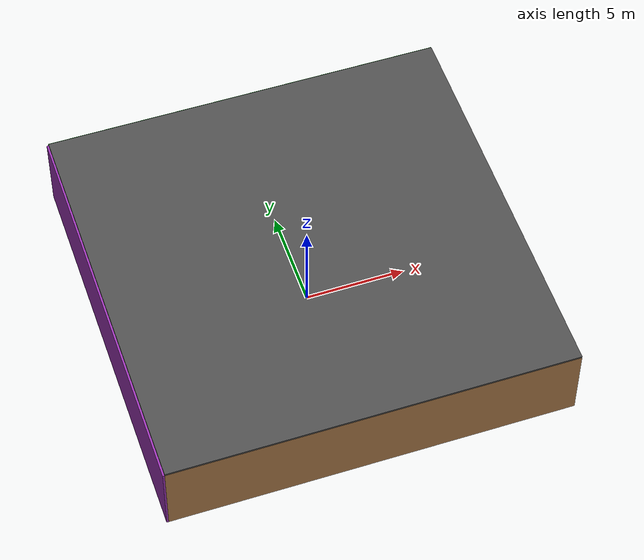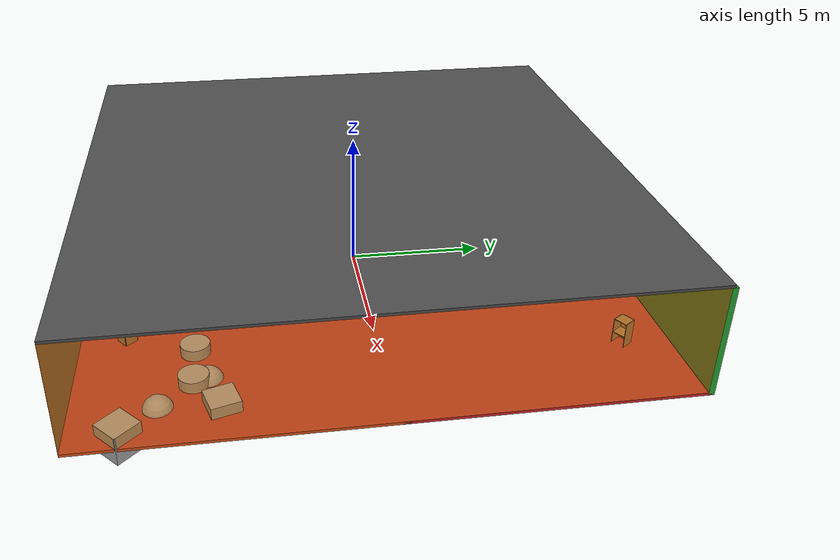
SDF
<sdf version="1.4">
 <world name="default">
  <physics type="ode">
   <max_step_size>0.001</max_step_size>
   <real_time_factor>1</real_time_factor>
   <real_time_update_rate>1000</real_time_update_rate>
   <gravity>0 0 -9.8</gravity>
  </physics>
  <scene><ambient>0.4 0.4 0.4 1</ambient><background>0.7 0.7 0.7 1</background><shadows>1</shadows></scene>
  <model name="Surrounding">
   <static>1</static>
   <link name="Ceiling">
    <collision name="Ceiling_Collision"><geometry><box><size>20 20 0.1</size></box></geometry></collision>
    <visual name="Ceiling_Visual">
     <geometry><box><size>20 20 0.1</size></box></geometry>
     <material>
      <script><uri>file://media/materials/scripts/gazebo.material</uri><name>Gazebo/DarkGrey</name></script>
     </material>
    </visual>
    <pose>0 0 4.05 0 0 0</pose>
   </link>
   <link name="Wall_South">
    <collision name="Wall_South_Collision">
     <geometry><box><size>20 0 4</size></box></geometry>
     <pose>0 0 2 0 -0 0</pose>
    </collision>
    <visual name="Wall_South_Visual">
     <pose>0 0 2 0 -0 0</pose>
     <geometry><box><size>20 0 4</size></box></geometry>
     <material>
      <script><uri>file://media/materials/scripts/gazebo.material</uri><name>Gazebo/WoodPallet</name></script>
     </material>
    </visual>
    <velocity_decay><linear>0</linear><angular>0</angular></velocity_decay>
    <pose>0 -10 0 0 -0 0</pose>
   </link>
   <link name="Wall_East">
    <collision name="Wall_21_Collision">
     <geometry><box><size>20 0 4</size></box></geometry>
     <pose>0 0 2 0 -0 0</pose>
    </collision>
    <visual name="Wall_21_Visual">
     <pose>0 0 2 0 -0 0</pose>
     <geometry><box><size>20 0 4</size></box></geometry>
     <material>
      <script>
       <uri>file://media/materials/scripts/gazebo.material</uri>
       <name>Gazebo/OrangeTransparent</name>
      </script>
     </material>
    </visual>
    <velocity_decay><linear>0</linear><angular>0</angular></velocity_decay>
    <pose>10 0 0 0 -0 1.5708</pose>
   </link>
   <link name="Wall_North">
    <collision name="Wall_22_Collision">
     <geometry><box><size>20 0.2 4</size></box></geometry>
     <pose>0 0 2 0 -0 0</pose>
    </collision>
    <visual name="Wall_22_Visual">
     <pose>0 0 2 0 -0 0</pose>
     <geometry><box><size>20 0.2 4</size></box></geometry>
     <material>
      <script><uri>file://media/materials/scripts/gazebo.material</uri><name>Gazebo/Green</name></script>
     </material>
    </visual>
    <velocity_decay><linear>0</linear><angular>0</angular></velocity_decay>
    <pose>0 10 0 0 -0 0</pose>
   </link>
   <link name="Wall_West">
    <collision name="Wall_23_Collision">
     <geometry><box><size>20 0.2 4</size></box></geometry>
     <pose>0 0 2 0 -0 0</pose>
    </collision>
    <visual name="Wall_23_Visual">
     <pose>0 0 2 0 -0 0</pose>
     <geometry><box><size>20 0.2 4</size></box></geometry>
     <material>
      <script><uri>file://media/materials/scripts/gazebo.material</uri><name>Gazebo/Purple</name></script>
     </material>
    </visual>
    <velocity_decay><linear>0</linear><angular>0</angular></velocity_decay>
    <pose>-10 0 0 0 0 -1.5708</pose>
   </link>
   <link name="Ground_link">
    <collision name="collision">
     <pose>0 0 .05 0 -0 0</pose>
     <geometry><box><size>20 20 0.1</size></box></geometry>
    </collision>
    <visual name="visual">
     <pose>0 0 .05 0 -0 0</pose>
     <geometry><box><size>20 20 0.1</size></box></geometry>
     <material>
      <script><uri>file://media/materials/scripts/gazebo.material</uri><name>Gazebo/RedGlow</name></script>
     </material>
    </visual>
   </link>
   <static>1</static>
  </model>
  <spherical_coordinates>
   <surface_model>EARTH_WGS84</surface_model>
   <latitude_deg>0</latitude_deg>
   <longitude_deg>0</longitude_deg>
   <elevation>0</elevation>
   <heading_deg>0</heading_deg>
  </spherical_coordinates>
  <light name="lightball_0" type="diffuse">
   <diffuse>0.8 0.8 0.8 1</diffuse>
   <specular>0.2 0.2 0.2 1</specular>
   <attenuation>
    <range>100</range>
    <constant>0.7</constant>
    <linear>0.01</linear>
    <quadratic>0.001</quadratic>
   </attenuation>
   <direction>-0.5 0.1 -0.9</direction>
   <pose>6.79467846935 4.05449416185 1.71741279245 0 0 0</pose>
  </light>
  <light name="lightball_1" type="diffuse">
   <diffuse>0.8 0.8 0.8 1</diffuse>
   <specular>0.2 0.2 0.2 1</specular>
   <attenuation>
    <range>100</range>
    <constant>0.7</constant>
    <linear>0.01</linear>
    <quadratic>0.001</quadratic>
   </attenuation>
   <direction>-0.5 0.1 -0.9</direction>
   <pose>5.77774423509 9.44774107268 3.37410423906 0 0 0</pose>
  </light>
  <light name="lightball_2" type="diffuse">
   <diffuse>0.8 0.8 0.8 1</diffuse>
   <specular>0.2 0.2 0.2 1</specular>
   <attenuation>
    <range>100</range>
    <constant>0.7</constant>
    <linear>0.01</linear>
    <quadratic>0.001</quadratic>
   </attenuation>
   <direction>-0.5 0.1 -0.9</direction>
   <pose>-3.19744359523 -5.48871647596 2.68489052357 0 0 0</pose>
  </light>
  <light name="lightball_3" type="diffuse">
   <diffuse>0.8 0.8 0.8 1</diffuse>
   <specular>0.2 0.2 0.2 1</specular>
   <attenuation>
    <range>100</range>
    <constant>0.7</constant>
    <linear>0.01</linear>
    <quadratic>0.001</quadratic>
   </attenuation>
   <direction>-0.5 0.1 -0.9</direction>
   <pose>5.6128311955 -9.59754589257 2.91935543551 0 0 0</pose>
  </light>
  <light name="lightball_4" type="diffuse">
   <diffuse>0.8 0.8 0.8 1</diffuse>
   <specular>0.2 0.2 0.2 1</specular>
   <attenuation>
    <range>100</range>
    <constant>0.7</constant>
    <linear>0.01</linear>
    <quadratic>0.001</quadratic>
   </attenuation>
   <direction>-0.5 0.1 -0.9</direction>
   <pose>8.67267079275 -6.22915384223 2.67954841631 0 0 0</pose>
  </light>
  <light name="lightball_5" type="diffuse">
   <diffuse>0.8 0.8 0.8 1</diffuse>
   <specular>0.2 0.2 0.2 1</specular>
   <attenuation>
    <range>100</range>
    <constant>0.7</constant>
    <linear>0.01</linear>
    <quadratic>0.001</quadratic>
   </attenuation>
   <direction>-0.5 0.1 -0.9</direction>
   <pose>7.33252531261 -4.45538067894 1.56791048325 0 0 0</pose>
  </light>
  <light name="lightball_6" type="diffuse">
   <diffuse>0.8 0.8 0.8 1</diffuse>
   <specular>0.2 0.2 0.2 1</specular>
   <attenuation>
    <range>100</range>
    <constant>0.7</constant>
    <linear>0.01</linear>
    <quadratic>0.001</quadratic>
   </attenuation>
   <direction>-0.5 0.1 -0.9</direction>
   <pose>-2.67597127795 -8.54465506211 2.67549967139 0 0 0</pose>
  </light>
  <light name="lightball_7" type="diffuse">
   <diffuse>0.8 0.8 0.8 1</diffuse>
   <specular>0.2 0.2 0.2 1</specular>
   <attenuation>
    <range>100</range>
    <constant>0.7</constant>
    <linear>0.01</linear>
    <quadratic>0.001</quadratic>
   </attenuation>
   <direction>-0.5 0.1 -0.9</direction>
   <pose>3.77828898276 -2.47213276865 0.747553564919 0 0 0</pose>
  </light>
  <light name="lightball_8" type="diffuse">
   <diffuse>0.8 0.8 0.8 1</diffuse>
   <specular>0.2 0.2 0.2 1</specular>
   <attenuation>
    <range>100</range>
    <constant>0.7</constant>
    <linear>0.01</linear>
    <quadratic>0.001</quadratic>
   </attenuation>
   <direction>-0.5 0.1 -0.9</direction>
   <pose>9.25907609242 4.97026337353 2.47406799685 0 0 0</pose>
  </light>
  <light name="lightball_9" type="diffuse">
   <diffuse>0.8 0.8 0.8 1</diffuse>
   <specular>0.2 0.2 0.2 1</specular>
   <attenuation>
    <range>100</range>
    <constant>0.7</constant>
    <linear>0.01</linear>
    <quadratic>0.001</quadratic>
   </attenuation>
   <direction>-0.5 0.1 -0.9</direction>
   <pose>-7.92893333339 -5.91190222697 2.46180241389 0 0 0</pose>
  </light>
  <light name="lightball_10" type="diffuse">
   <diffuse>0.8 0.8 0.8 1</diffuse>
   <specular>0.2 0.2 0.2 1</specular>
   <attenuation>
    <range>100</range>
    <constant>0.7</constant>
    <linear>0.01</linear>
    <quadratic>0.001</quadratic>
   </attenuation>
   <direction>-0.5 0.1 -0.9</direction>
   <pose>-6.62222814089 2.44892905618 0.673060136745 0 0 0</pose>
  </light>
  <include>
   <uri>model://construction_cone</uri>
   <pose>-7.12105628191 1.20508121475 0 0 0 3.05152600575</pose>
  </include>
  <include><uri>model://cabinet</uri><pose>-1.6202769369 2.25017070117 0 0 0 0.701816585869</pose></include>
  <include><uri>model://cabinet</uri><pose>4.59872602664 -8.42864815905 0 0 0 0.670405247125</pose></include>
  <include>
   <uri>model://textured_shapes</uri>
   <pose>8.30485791821 -7.249793089 0 0 0 0.747589267028</pose>
  </include>
  <include>
   <uri>model://textured_shapes</uri>
   <pose>7.05767996245 -5.69794927412 0 0 0 1.85923216218</pose>
  </include>
  <include><uri>model://cabinet</uri><pose>7.03479151529 8.21834176881 0 0 0 2.14919870054</pose></include>
 </world>
</sdf>

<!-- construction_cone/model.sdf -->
<sdf version="1.5">
  <model name="Construction Cone">
    <link name="link">
      <collision name="collision">
        <geometry>
          <mesh>
            <scale>10 10 10</scale>
            <uri>file://isr-testbed/construction_cone/meshes/construction_cone.dae</uri>
          </mesh>
        </geometry>
      </collision>
      <visual name="visual">
        <geometry>
          <mesh>
            <scale>10 10 10</scale>
            <uri>file://isr-testbed/construction_cone/meshes/construction_cone.dae</uri>
          </mesh>
        </geometry>
      </visual>
    </link>
  </model>
</sdf>

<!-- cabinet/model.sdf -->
<sdf version="1.5">
  <model name="cabinet">
    <static>true</static>
    <link name="cabinet_bottom_plate">
      <inertial>
        <pose>0 0 -1 0 0 0</pose>
        <inertia>
          <ixx>2.050000</ixx>
          <ixy>0</ixy>
          <ixz>0</ixz>
          <iyy>2.050000</iyy>
          <iyz>0</iyz>
          <izz>2.050000</izz>
        </inertia>
        <mass>25.000000</mass>
      </inertial>
      <collision name="cabinet_bottom_plate_geom">
        <pose>0 0 0.010000 0 0 0</pose>
        <geometry>
          <box>
            <size>0.450000 0.450000 0.020000</size>
          </box>
        </geometry>
      </collision>
      <visual name="cabinet_bottom_plate_geom_visual">
        <pose>0 0 0.010000 0 0 0</pose>
        <geometry>
          <box>
            <size>0.450000 0.450000 0.020000</size>
          </box>
        </geometry>
        <material>
          <script>
            <uri>model://media/materials/scripts/gazebo.material</uri>
            <name>Gazebo/Wood</name>
          </script>
        </material>
      </visual>
      <collision name="cabinet_bottom_plate_geom_cabinet_back_plate">
        <pose>0.235000 0 0.510000 0 0 0</pose>
        <geometry>
          <box>
            <size>0.020000 0.450000 1.020000</size>
          </box>
        </geometry>
      </collision>
      <visual name="cabinet_bottom_plate_geom_cabinet_back_plate_visual">
        <pose>0.235000 0 0.510000 0 0 0</pose>
        <geometry>
          <box>
            <size>0.020000 0.450000 1.020000</size>
          </box>
        </geometry>
        <material>
          <script>
            <uri>model://media/materials/scripts/gazebo.material</uri>
            <name>Gazebo/Wood</name>
          </script>
        </material>
      </visual>
      <collision name="cabinet_bottom_plate_geom_cabinet_left_plate">
        <pose>0 0.235000 0.510000 0 0 0</pose>
        <geometry>
          <box>
            <size>0.450000 0.020000 1.020000</size>
          </box>
        </geometry>
      </collision>
      <visual name="cabinet_bottom_plate_geom_cabinet_left_plate_visual">
        <pose>0 0.235000 0.510000 0 0 0</pose>
        <geometry>
          <box>
            <size>0.450000 0.020000 1.020000</size>
          </box>
        </geometry>
        <material>
          <script>
            <uri>model://media/materials/scripts/gazebo.material</uri>
            <name>Gazebo/Wood</name>
          </script>
        </material>
      </visual>
      <collision name="cabinet_bottom_plate_geom_cabinet_middle_plate">
        <pose>0 0 0.510000 0 0 0</pose>
        <geometry>
          <box>
            <size>0.450000 0.450000 0.020000</size>
          </box>
        </geometry>
      </collision>
      <visual name="cabinet_bottom_plate_geom_cabinet_middle_plate_visual">
        <pose>0 0 0.510000 0 0 0</pose>
        <geometry>
          <box>
            <size>0.450000 0.450000 0.020000</size>
          </box>
        </geometry>
        <material>
          <script>
            <uri>model://media/materials/scripts/gazebo.material</uri>
            <name>Gazebo/Wood</name>
          </script>
        </material>
      </visual>
      <collision name="cabinet_bottom_plate_geom_cabinet_right_plate">
        <pose>0 -0.235000 0.510000 0 0 0</pose>
        <geometry>
          <box>
            <size>0.450000 0.020000 1.020000</size>
          </box>
        </geometry>
      </collision>
      <visual name="cabinet_bottom_plate_geom_cabinet_right_plate_visual">
        <pose>0 -0.235000 0.510000 0 0 0</pose>
        <geometry>
          <box>
            <size>0.450000 0.020000 1.020000</size>
          </box>
        </geometry>
        <material>
          <script>
            <uri>model://media/materials/scripts/gazebo.material</uri>
            <name>Gazebo/Wood</name>
          </script>
        </material>
      </visual>
      <collision name="cabinet_bottom_plate_geom_cabinet_top_plate">
        <pose>0 0 1.010000 0 0 0</pose>
        <geometry>
          <box>
            <size>0.450000 0.450000 0.020000</size>
          </box>
        </geometry>
      </collision>
      <visual name="cabinet_bottom_plate_geom_cabinet_top_plate_visual">
        <pose>0 0 1.010000 0 0 0</pose>
        <geometry>
          <box>
            <size>0.450000 0.450000 0.020000</size>
          </box>
        </geometry>
        <material>
          <script>
            <uri>model://media/materials/scripts/gazebo.material</uri>
            <name>Gazebo/Wood</name>
          </script>
        </material>
      </visual>
    </link>
  </model>
</sdf>

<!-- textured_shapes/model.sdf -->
<sdf version="1.6">
  <model name="textured_shapes">
    <pose>0 0 0.5 0 0 0</pose>
    <link name="box">
      <pose>0 -1.5 0 0 0 0</pose>
      <collision name="collision">
        <geometry>
          <box>
            <size>1 1 1</size>
          </box>
        </geometry>
      </collision>
      <visual name="visual">
        <geometry>
          <box>
            <size>1 1 1</size>
          </box>
        </geometry>
        <material>
          <script>
            <uri>model://../model_source/models/textured_shapes/materials/scripts</uri>
            <uri>model://../model_source/models/textured_shapes/materials/textures</uri>
            <name>TexturedShape/Squares</name>
          </script>
        </material>
      </visual>
    </link>
    <link name="sphere">
      <collision name="collision">
        <geometry>
          <sphere>
            <radius>0.5</radius>
          </sphere>
        </geometry>
      </collision>
      <visual name="visual">
        <geometry>
          <sphere>
            <radius>0.5</radius>
          </sphere>
        </geometry>
        <material>
          <script>
            <uri>model://../model_source/models/textured_shapes/materials/scripts</uri>
            <uri>model://../model_source/models/textured_shapes/materials/textures</uri>
            <name>TexturedShape/Squares</name>
          </script>
        </material>
      </visual>
    </link>
    <link name="cylinder">
      <pose>0 1.5 0 0 0 0</pose>
      <collision name="collision">
        <geometry>
          <cylinder>
            <radius>0.5</radius>
            <length>1</length>
          </cylinder>
        </geometry>
      </collision>
      <visual name="visual">
        <geometry>
          <cylinder>
            <radius>0.5</radius>
            <length>1</length>
          </cylinder>
        </geometry>
        <material>
          <script>
            <uri>model://../model_source/models/textured_shapes/materials/scripts</uri>
            <uri>model://../model_source/models/textured_shapes/materials/textures</uri>
            <name>TexturedShape/Squares</name>
          </script>
        </material>
      </visual>
    </link>
  </model>
</sdf>
